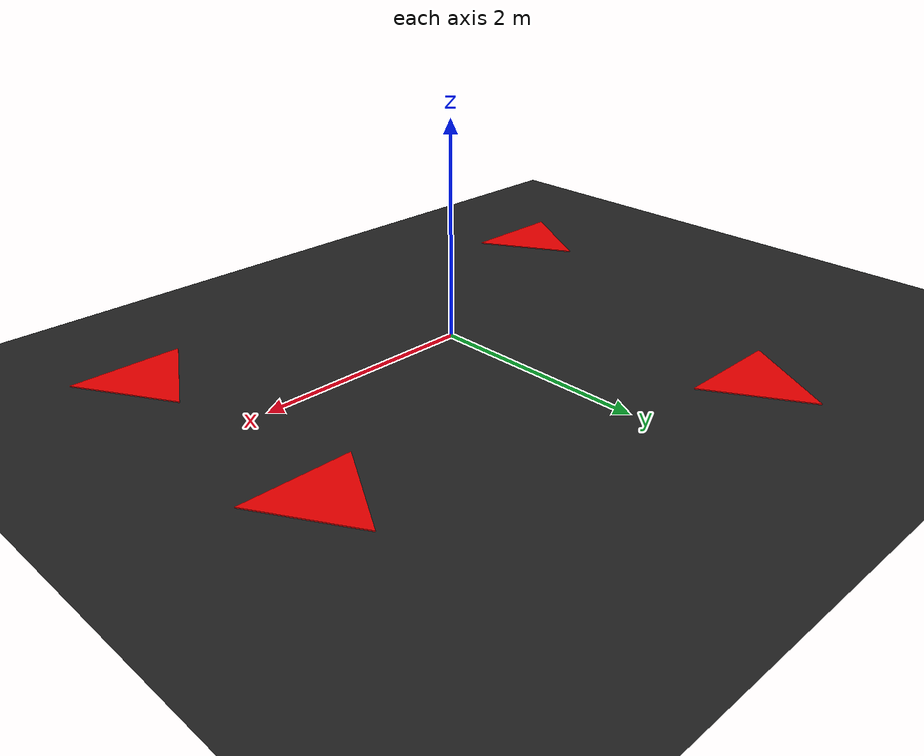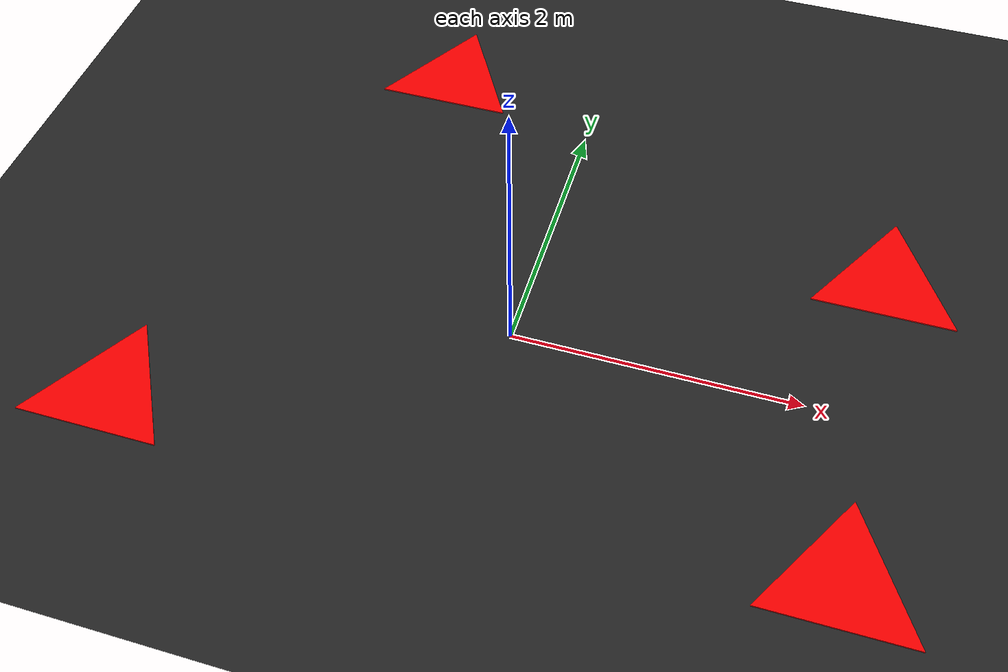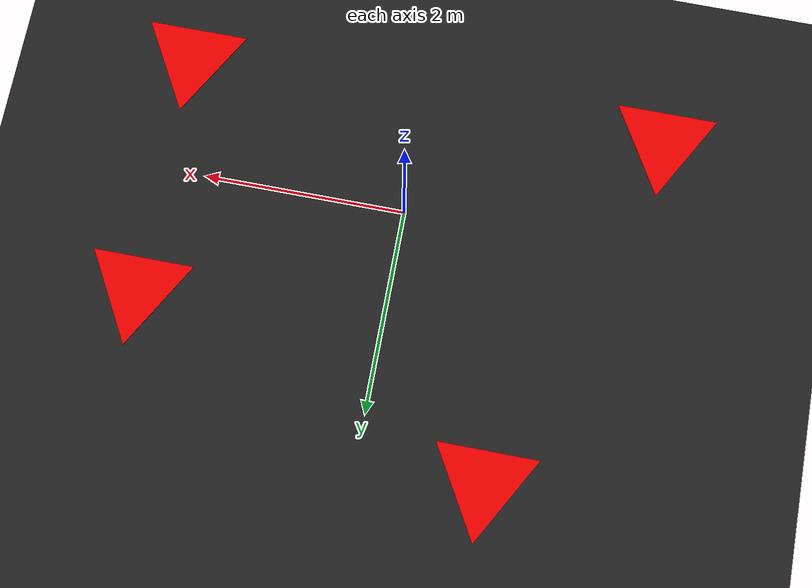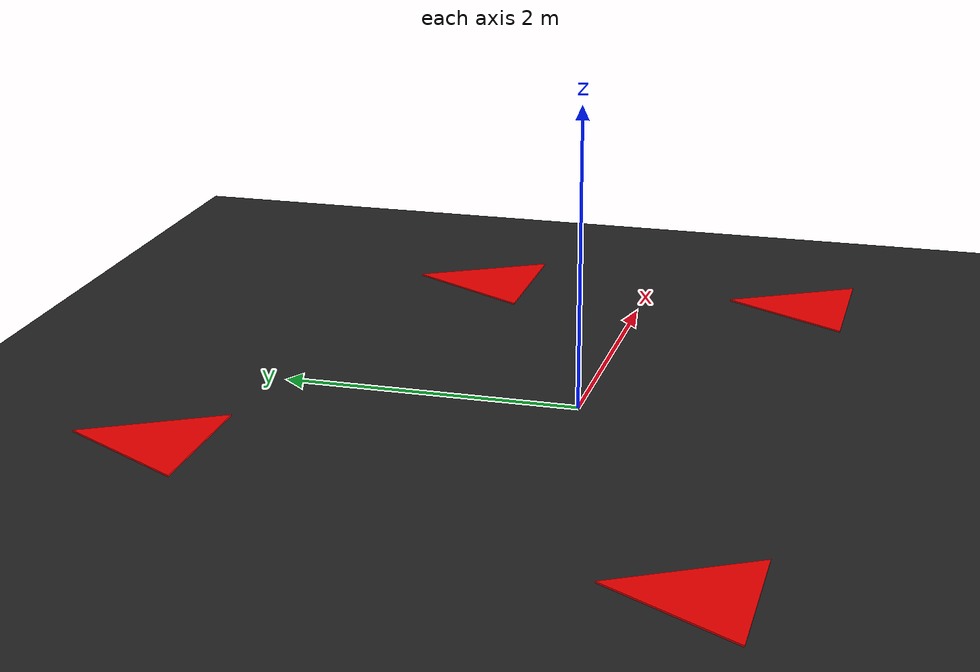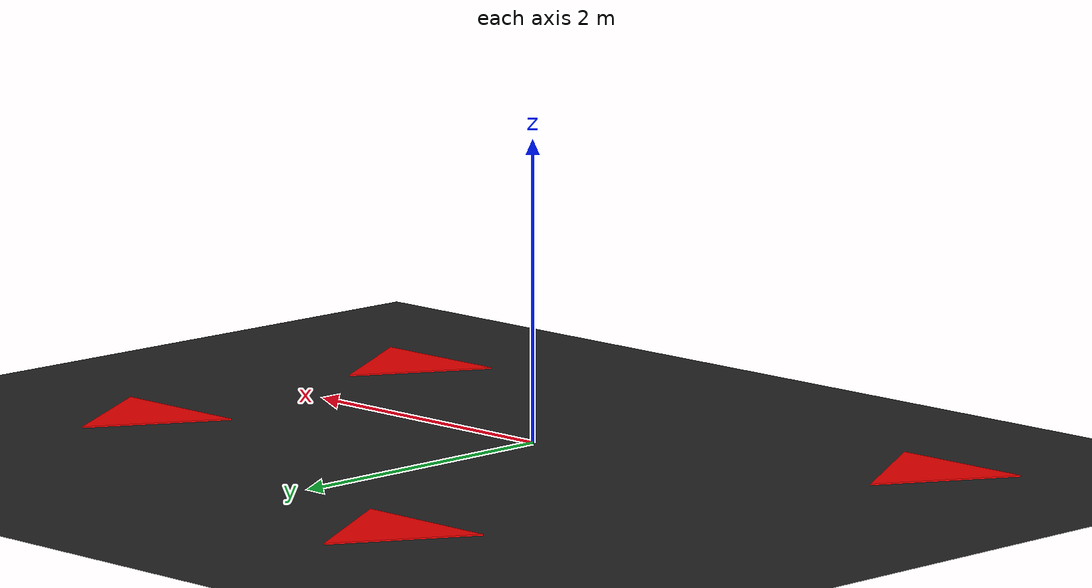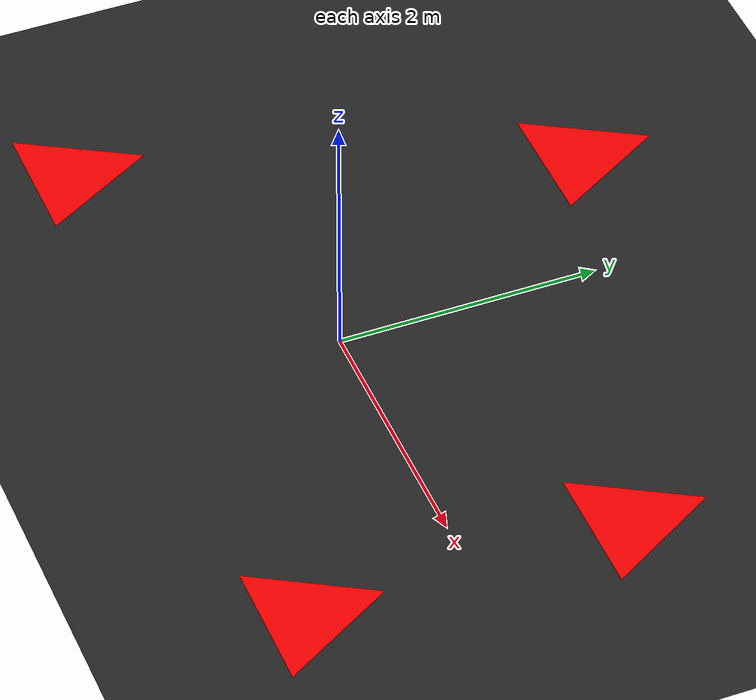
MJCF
<mujoco model="khojo_arena">

  <option gravity="0 0 -9.81" timestep="0.005" integrator="RK4"/>

  <visual>
    <!-- Headlight follows the active camera — at z=20 pointing down it acts as overhead sun -->
    <headlight ambient="0.7 0.7 0.7" diffuse="0.9 0.9 0.9" specular="0.1 0.1 0.1"/>
    <rgba haze="0.0 0.0 0.0 1"/>
    <global azimuth="120" elevation="-20" offwidth="1920" offheight="1920"/>

    <quality offsamples="0" shadowsize="0" numslices="14" numstacks="8" numquads="2"/>
  </visual>

  <asset>
    <!-- ── Skybox / floor ── -->
    <texture type="skybox" builtin="gradient" rgb1="0.4 0.6 0.8" rgb2="0 0 0"
             width="512" height="512"/>
    <material name="floor_mat" rgba="0.15 0.15 0.15 1" reflectance="0.0"/>

    <texture name="arena_tex" type="2d" file="meshes/textures/Khojo_Arena.png"/>
    <material name="arena_mat" texture="arena_tex" texuniform="true" texrepeat="0.11547 0.11547"
              rgba="1 1 1 1  " reflectance="0.0"/>

    <!-- Flat equilateral-triangle floor marker, side 1m. MuJoCo has no
         triangular-prism primitive, so this is a thin (0.01m) hand-built
         mesh instead (see meshes/triangle_marker.obj). -->
    <mesh name="triangle_marker" file="meshes/triangle_marker.obj"/>
  </asset>

  <worldbody>
    <light pos="0 0 10" dir="0 0 -1" directional="true" castshadow="false"
           diffuse="0.9 0.9 0.9" specular="0.1 0.1 0.1"/>
    <light pos="0 0 20" dir="0 0 -1" directional="true"
           diffuse="0.8 0.8 0.8" specular="0.0 0.0 0.0" castshadow="false"/>
    <geom name="floor" type="plane" size="20 20 0.1" material="floor_mat"
          contype="1" conaffinity="1"/>

    <geom name="arena_floor" type="plane" size="8.6603 8.6603 0.01" pos="0 0 0.001"
          material="arena_mat" contype="0" conaffinity="0"/>

    <geom name="obstacle_triangle_1" type="mesh" mesh="triangle_marker" pos="2.406828 1.203414 0.005"
          rgba="1 0 0 1" contype="0" conaffinity="0"/> <!-- H5 (NE) -->
    <geom name="obstacle_triangle_2" type="mesh" mesh="triangle_marker" pos="2.406828 -1.203414 0.005"
          rgba="1 0 0 1" contype="0" conaffinity="0"/> <!-- H7 (SE) -->
    <geom name="obstacle_triangle_3" type="mesh" mesh="triangle_marker" pos="-1.203414 2.406828 0.005"
          rgba="1 0 0 1" contype="0" conaffinity="0"/> <!-- E4 (NW) -->
    <geom name="obstacle_triangle_4" type="mesh" mesh="triangle_marker" pos="-2.406828 -1.203414 0.005"
          rgba="1 0 0 1" contype="0" conaffinity="0"/> <!-- D7 (SW) -->

    <camera name="top_cam" pos="0 0 15" xyaxes="1 0 0 0 1 0" fovy="60"/>
  </worldbody>
</mujoco>
